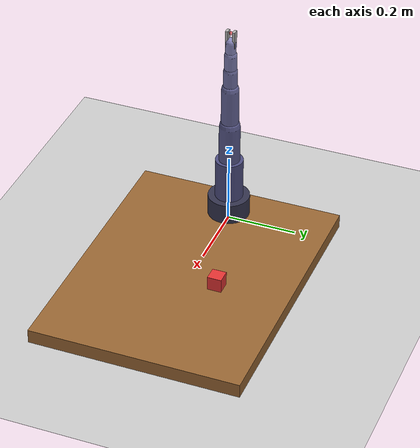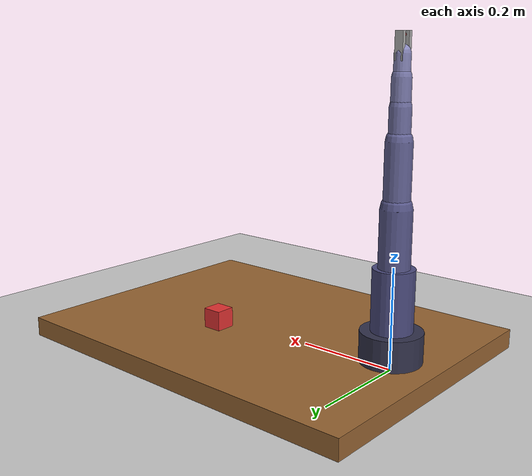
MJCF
<mujoco model="widowx_arm">
  <compiler angle="radian" meshdir="meshes"/>

  <option timestep="0.002" gravity="0 0 -9.81">
    <flag contact="enable"/>
  </option>

  <default>
    <geom rgba="0.3 0.3 0.4 1" contype="1" conaffinity="1" condim="3"/>
    <joint limited="true" damping="0.5" armature="0.01"/>
    <position ctrllimited="true" forcerange="-10 10" kp="50" kv="5"/>
  </default>

  <worldbody>
    <light pos="0 0 3" dir="0 0 -1" diffuse="0.8 0.8 0.8"/>

    <!-- 桌子 -->
    <geom name="table" type="box" pos="0.3 0 0" size="0.4 0.3 0.02" rgba="0.6 0.4 0.2 1"/>
    <geom name="floor" type="plane" pos="0 0 -0.02" size="1 1 0.02" rgba="0.8 0.8 0.8 1"/>

    <!-- 目标物体（红色方块） -->
    <body name="target" pos="0.35 0.1 0.05">
      <joint type="free" limited="false"/>
      <geom name="target_geom" type="box" size="0.02 0.02 0.02" rgba="0.9 0.2 0.2 1" mass="0.05"/>
    </body>

    <!-- 相机（VLA 的"眼睛"，固定在机械臂上方） -->
    <camera name="wrist_cam" pos="0.2 -0.3 0.5" xyaxes="1 0 0 0 1 0" fovy="60"/>

    <!-- 机械臂基座 -->
    <body name="base" pos="0 0 0.05">
      <geom name="base_geom" type="cylinder" size="0.06 0.03" rgba="0.2 0.2 0.3 1"/>

      <!-- Joint 1: 基座旋转 (绕 Z 轴) -->
      <body name="link1" pos="0 0 0.03">
        <joint name="joint1" type="hinge" axis="0 0 1" range="-3.14 3.14"/>
        <geom name="link1_geom" type="cylinder" size="0.04 0.08" pos="0 0 0.04" rgba="0.3 0.3 0.5 1"/>

        <!-- Joint 2: 肩部俯仰 (绕 Y 轴) -->
        <body name="link2" pos="0 0 0.08">
          <joint name="joint2" type="hinge" axis="0 1 0" range="-2.0 1.5"/>
          <geom name="link2_geom" type="capsule" size="0.03" fromto="0 0 0  0 0 0.15" rgba="0.35 0.35 0.55 1"/>

          <!-- Joint 3: 肘部俯仰 (绕 Y 轴) -->
          <body name="link3" pos="0 0 0.15">
            <joint name="joint3" type="hinge" axis="0 1 0" range="-2.5 1.5"/>
            <geom name="link3_geom" type="capsule" size="0.025" fromto="0 0 0  0 0 0.12" rgba="0.4 0.4 0.6 1"/>

            <!-- Joint 4: 腕部旋转 (绕 Z 轴) -->
            <body name="link4" pos="0 0 0.12">
              <joint name="joint4" type="hinge" axis="0 0 1" range="-3.14 3.14"/>
              <geom name="link4_geom" type="capsule" size="0.02" fromto="0 0 0  0 0 0.06" rgba="0.45 0.45 0.65 1"/>

              <!-- Joint 5: 腕部俯仰 (绕 Y 轴) -->
              <body name="link5" pos="0 0 0.06">
                <joint name="joint5" type="hinge" axis="0 1 0" range="-2.0 2.0"/>
                <geom name="link5_geom" type="capsule" size="0.018" fromto="0 0 0  0 0 0.05" rgba="0.5 0.5 0.7 1"/>

                <!-- Joint 6: 末端旋转 (绕 Z 轴) -->
                <body name="link6" pos="0 0 0.05">
                  <joint name="joint6" type="hinge" axis="0 0 1" range="-3.14 3.14"/>
                  <geom name="link6_geom" type="capsule" size="0.015" fromto="0 0 0  0 0 0.04" rgba="0.55 0.55 0.75 1"/>

                  <!-- 夹爪 -->
                  <body name="gripper_base" pos="0 0 0.04">
                    <geom name="gripper_left" type="box" size="0.008 0.004 0.025" pos="0 0.01 0.012" rgba="0.7 0.7 0.7 1"/>
                    <geom name="gripper_right" type="box" size="0.008 0.004 0.025" pos="0 -0.01 0.012" rgba="0.7 0.7 0.7 1"/>

                    <!-- 末端 site（用于获取世界坐标） -->
                    <site name="end_effector" pos="0 0 0.03" size="0.005" rgba="1 0 0 0.5"/>
                  </body>
                </body>
              </body>
            </body>
          </body>
        </body>
      </body>
    </body>
  </worldbody>

  <actuator>
    <position name="act1" joint="joint1" kp="80" kv="8" ctrlrange="-3.14 3.14"/>
    <position name="act2" joint="joint2" kp="80" kv="8" ctrlrange="-2.0 1.5"/>
    <position name="act3" joint="joint3" kp="80" kv="8" ctrlrange="-2.5 1.5"/>
    <position name="act4" joint="joint4" kp="60" kv="6" ctrlrange="-3.14 3.14"/>
    <position name="act5" joint="joint5" kp="60" kv="6" ctrlrange="-2.0 2.0"/>
    <position name="act6" joint="joint6" kp="60" kv="6" ctrlrange="-3.14 3.14"/>
  </actuator>
</mujoco>
